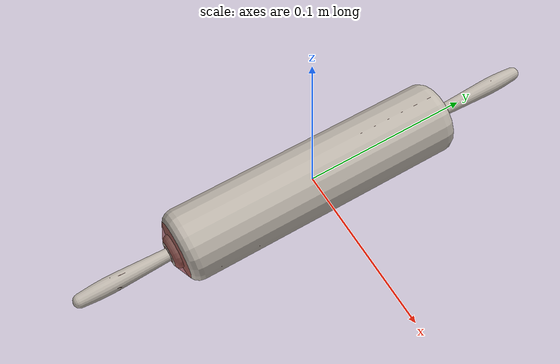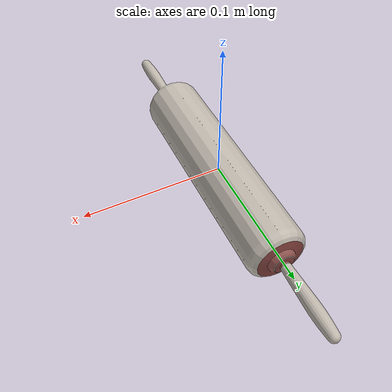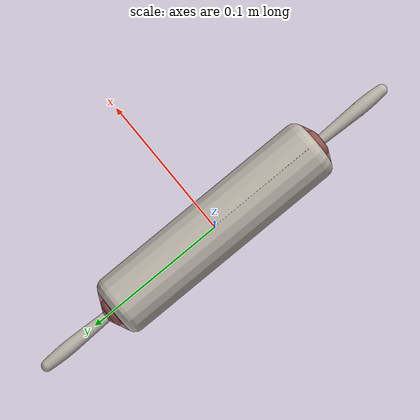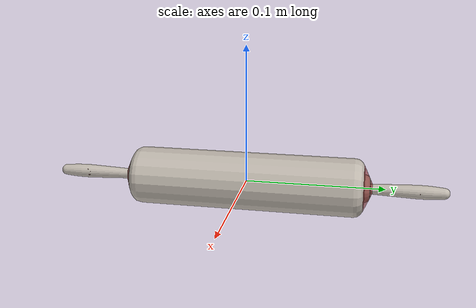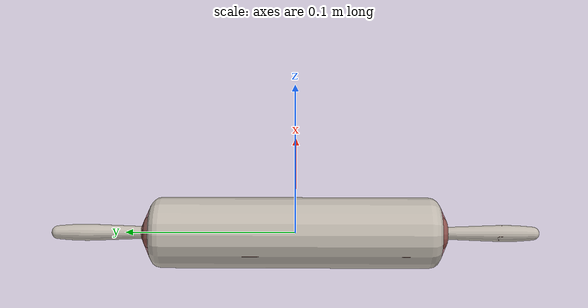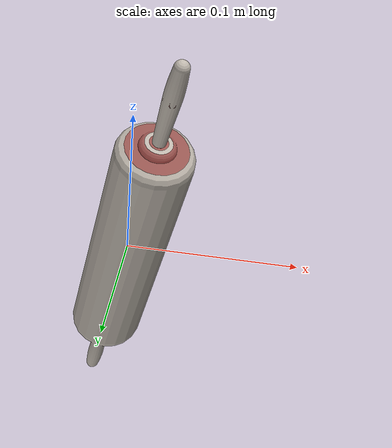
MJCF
<mujoco model="rolling_pin_0">
  <asset>
    <mesh file="visual/model_normalized_0.obj" name="model_normalized_0_vis" scale="0.28750000000000003 0.28750000000000003 0.28750000000000003" refquat="0.7071067811865475 0.0 0.0 0.7071067811865476" />
    <texture type="2d" name="image0" file="visual/image0.png" />
    <material name="lambert1.006" texture="image0" specular="0.5" shininess="0.25" />
    <mesh file="collision/collision_mesh_collision_0.obj" name="rolling_collision_mesh_0" scale="0.28750000000000003 0.28750000000000003 0.28750000000000003" refquat="0.7071067811865475 0.0 0.0 0.7071067811865476" />
    <mesh file="collision/collision_mesh_collision_1.obj" name="rolling_collision_mesh_1" scale="0.28750000000000003 0.28750000000000003 0.28750000000000003" refquat="0.7071067811865475 0.0 0.0 0.7071067811865476" />
    <mesh file="collision/collision_mesh_collision_2.obj" name="rolling_collision_mesh_2" scale="0.28750000000000003 0.28750000000000003 0.28750000000000003" refquat="0.7071067811865475 0.0 0.0 0.7071067811865476" />
  </asset>
  <default>
    <default class="region">
      <geom group="1" conaffinity="0" contype="0" rgba="0 1 0 0" />
    </default>
    <default class="collision">
      <geom group="0" rgba="0.5 0 0 0.5" density="1000.0" />
    </default>
  </default>
  <worldbody>
    <body>
      <body name="object">
        <geom solimp="0.998 0.998 0.001" solref="0.001 1" density="100" friction="0.95 0.3 0.1" type="mesh" mesh="model_normalized_0_vis" conaffinity="0" contype="0" group="1" material="lambert1.006" />
        <geom class="region" name="reg_bbox" type="box" pos="0 0 0" size="0.020958531500000006 0.14375000000000002 0.020958531500000006" />
        <geom mesh="rolling_collision_mesh_0" type="mesh" class="collision" />
        <geom mesh="rolling_collision_mesh_1" type="mesh" class="collision" />
        <geom mesh="rolling_collision_mesh_2" type="mesh" class="collision" />
      </body>
    <site name="bottom_site" pos="0 0 -0.020958531647920071" size="0.005" rgba="0 0 0 0" /><site name="top_site" pos="0 0 0.020958529785276053" size="0.005" rgba="0 0 0 0" /><site name="horizontal_radius_site" pos="0.14375000007512023 0 0" size="0.005" rgba="0 0 0 0" /></body>
  </worldbody>
</mujoco>
